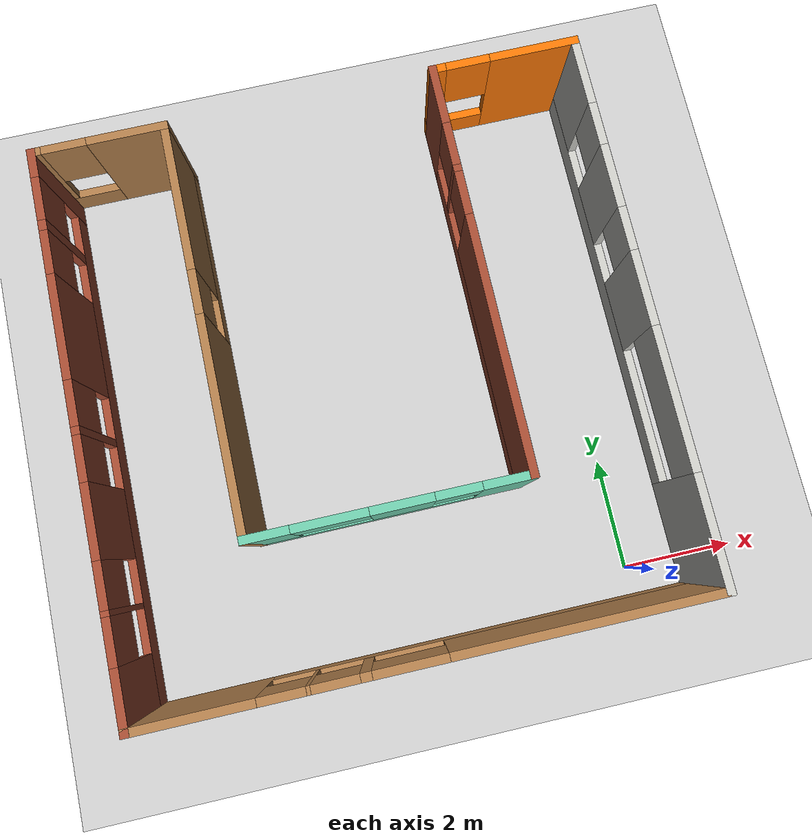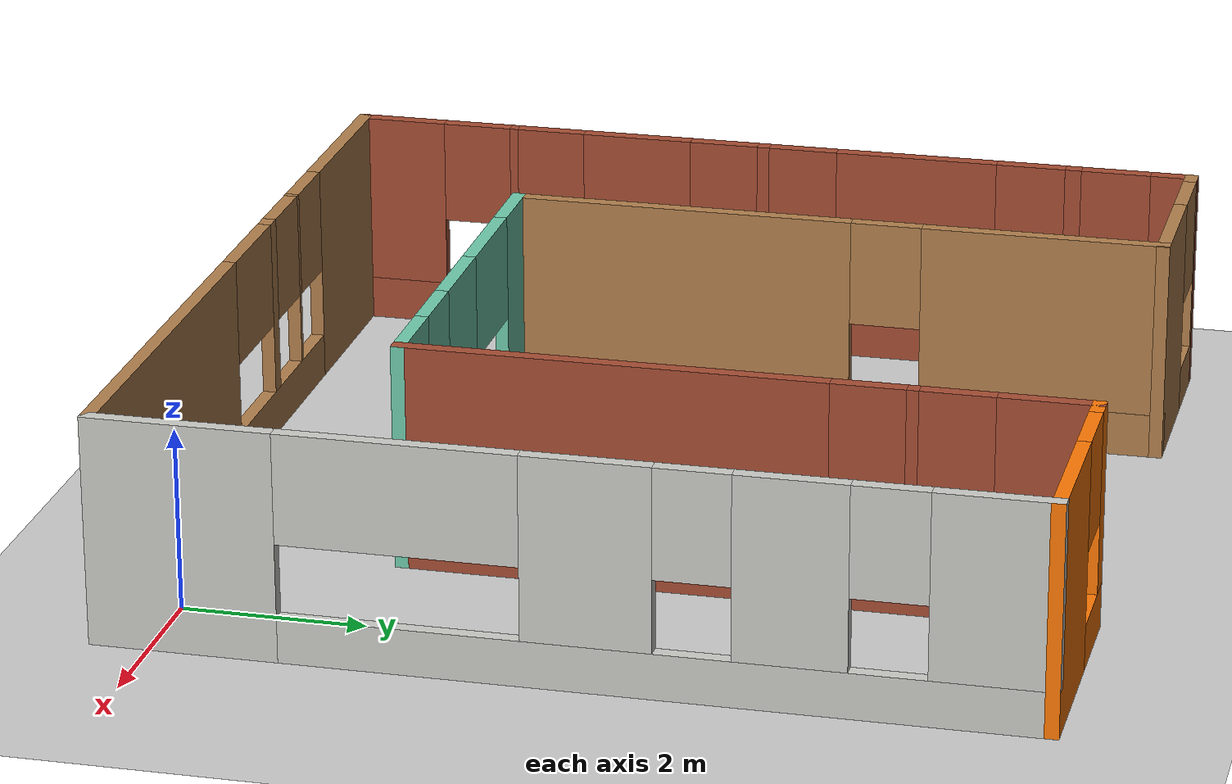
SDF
<sdf version="1.6">
 <world name="default">
  <light name="sun" type="directional">
   <pose>0 0 10 0 -0 0</pose>
   <diffuse>0.8 0.8 0.8 1</diffuse>
   <specular>0.2 0.2 0.2 1</specular>
   <attenuation>
    <range>1000</range>
    <constant>0.9</constant>
    <linear>0.01</linear>
    <quadratic>0.001</quadratic>
   </attenuation>
   <direction>-0.5 0.1 -0.9</direction>
  </light>
  <model name="ground_plane">
   <static>1</static>
   <link name="link">
    <collision name="collision">
     <geometry><plane><normal>0 0 1</normal><size>100 100</size></plane></geometry>
     <surface>
      <contact><collide_bitmask>65535</collide_bitmask></contact>
      <friction><ode><mu>100</mu><mu2>50</mu2></ode></friction>
     </surface>
    </collision>
    <visual name="visual">
     <cast_shadows>0</cast_shadows>
     <geometry><plane><normal>0 0 1</normal><size>100 100</size></plane></geometry>
     <material>
      <script><uri>file://media/materials/scripts/gazebo.material</uri><name>Gazebo/Grey</name></script>
     </material>
    </visual>
   </link>
  </model>
  <gravity>0 0 -9.8</gravity>
  <magnetic_field>6e-06 2.3e-05 -4.2e-05</magnetic_field>
  <atmosphere type="adiabatic"/>
  <physics name="default_physics" default="0" type="ode">
   <max_step_size>0.001</max_step_size>
   <real_time_factor>1</real_time_factor>
   <real_time_update_rate>1000</real_time_update_rate>
  </physics>
  <scene><ambient>0.4 0.4 0.4 1</ambient><background>0.7 0.7 0.7 1</background><shadows>1</shadows></scene>
  <spherical_coordinates>
   <surface_model>EARTH_WGS84</surface_model>
   <latitude_deg>0</latitude_deg>
   <longitude_deg>0</longitude_deg>
   <elevation>0</elevation>
   <heading_deg>0</heading_deg>
  </spherical_coordinates>
  <model name="MyWorld2">
   <pose>-3.91528 4.35922 0 0 -0 0</pose>
   <link name="Wall_28">
    <pose>4.9 0 0 0 -0 1.5708</pose>
    <visual name="Wall_28_Visual_0">
     <pose>-3.99143 0 1.25 0 -0 0</pose>
     <geometry><box><size>2.01715 0.15 2.5</size></box></geometry>
     <material>
      <script><uri>file://media/materials/scripts/gazebo.material</uri><name>Gazebo/CeilingTiled</name></script>
      <ambient>1 1 1 1</ambient>
     </material>
     <meta><layer>0</layer></meta>
    </visual>
    <collision name="Wall_28_Collision_0">
     <geometry><box><size>2.01715 0.15 2.5</size></box></geometry>
     <pose>-3.99143 0 1.25 0 -0 0</pose>
    </collision>
    <visual name="Wall_28_Visual_1">
     <pose>1.00857 0 0.25 0 -0 0</pose>
     <geometry><box><size>7.98285 0.15 0.5</size></box></geometry>
     <material>
      <script><uri>file://media/materials/scripts/gazebo.material</uri><name>Gazebo/CeilingTiled</name></script>
      <ambient>1 1 1 1</ambient>
     </material>
     <meta><layer>0</layer></meta>
    </visual>
    <collision name="Wall_28_Collision_1">
     <geometry><box><size>7.98285 0.15 0.5</size></box></geometry>
     <pose>1.00857 0 0.25 0 -0 0</pose>
    </collision>
    <visual name="Wall_28_Visual_2">
     <pose>0.230766 0 1.5 0 -0 0</pose>
     <geometry><box><size>1.35964 0.15 2</size></box></geometry>
     <material>
      <script><uri>file://media/materials/scripts/gazebo.material</uri><name>Gazebo/CeilingTiled</name></script>
      <ambient>1 1 1 1</ambient>
     </material>
     <meta><layer>0</layer></meta>
    </visual>
    <collision name="Wall_28_Collision_2">
     <geometry><box><size>1.35964 0.15 2</size></box></geometry>
     <pose>0.230766 0 1.5 0 -0 0</pose>
    </collision>
    <visual name="Wall_28_Visual_3">
     <pose>2.29916 0 1.5 0 -0 0</pose>
     <geometry><box><size>1.17714 0.15 2</size></box></geometry>
     <material>
      <script><uri>file://media/materials/scripts/gazebo.material</uri><name>Gazebo/CeilingTiled</name></script>
      <ambient>1 1 1 1</ambient>
     </material>
     <meta><layer>0</layer></meta>
    </visual>
    <collision name="Wall_28_Collision_3">
     <geometry><box><size>1.17714 0.15 2</size></box></geometry>
     <pose>2.29916 0 1.5 0 -0 0</pose>
    </collision>
    <visual name="Wall_28_Visual_4">
     <pose>4.34386 0 1.5 0 -0 0</pose>
     <geometry><box><size>1.31228 0.15 2</size></box></geometry>
     <material>
      <script><uri>file://media/materials/scripts/gazebo.material</uri><name>Gazebo/CeilingTiled</name></script>
      <ambient>1 1 1 1</ambient>
     </material>
     <meta><layer>0</layer></meta>
    </visual>
    <collision name="Wall_28_Collision_4">
     <geometry><box><size>1.31228 0.15 2</size></box></geometry>
     <pose>4.34386 0 1.5 0 -0 0</pose>
    </collision>
    <visual name="Wall_28_Visual_5">
     <pose>-1.71595 0 1.9 0 -0 0</pose>
     <geometry><box><size>2.5338 0.15 1.2</size></box></geometry>
     <material>
      <script><uri>file://media/materials/scripts/gazebo.material</uri><name>Gazebo/CeilingTiled</name></script>
      <ambient>1 1 1 1</ambient>
     </material>
     <meta><layer>0</layer></meta>
    </visual>
    <collision name="Wall_28_Collision_5">
     <geometry><box><size>2.5338 0.15 1.2</size></box></geometry>
     <pose>-1.71595 0 1.9 0 -0 0</pose>
    </collision>
    <visual name="Wall_28_Visual_6">
     <pose>1.31059 0 1.9 0 -0 0</pose>
     <geometry><box><size>0.8 0.15 1.2</size></box></geometry>
     <material>
      <script><uri>file://media/materials/scripts/gazebo.material</uri><name>Gazebo/CeilingTiled</name></script>
      <ambient>1 1 1 1</ambient>
     </material>
     <meta><layer>0</layer></meta>
    </visual>
    <collision name="Wall_28_Collision_6">
     <geometry><box><size>0.8 0.15 1.2</size></box></geometry>
     <pose>1.31059 0 1.9 0 -0 0</pose>
    </collision>
    <visual name="Wall_28_Visual_7">
     <pose>3.28773 0 1.9 0 -0 0</pose>
     <geometry><box><size>0.8 0.15 1.2</size></box></geometry>
     <material>
      <script><uri>file://media/materials/scripts/gazebo.material</uri><name>Gazebo/CeilingTiled</name></script>
      <ambient>1 1 1 1</ambient>
     </material>
     <meta><layer>0</layer></meta>
    </visual>
    <collision name="Wall_28_Collision_7">
     <geometry><box><size>0.8 0.15 1.2</size></box></geometry>
     <pose>3.28773 0 1.9 0 -0 0</pose>
    </collision>
   </link>
   <link name="Wall_29">
    <pose>3.6 4.925 0 0 -0 3.14159</pose>
    <visual name="Wall_29_Visual_0">
     <pose>-0.556536 0 1.25 0 -0 0</pose>
     <geometry><box><size>1.63693 0.15 2.5</size></box></geometry>
     <material>
      <script><uri>file://media/materials/scripts/gazebo.material</uri><name>Gazebo/Grey</name></script>
      <ambient>0.996078 0.47451 0.0196078 1</ambient>
     </material>
     <meta><layer>0</layer></meta>
    </visual>
    <collision name="Wall_29_Collision_0">
     <geometry><box><size>1.63693 0.15 2.5</size></box></geometry>
     <pose>-0.556536 0 1.25 0 -0 0</pose>
    </collision>
    <visual name="Wall_29_Visual_1">
     <pose>0.818464 0 0.25 0 -0 0</pose>
     <geometry><box><size>1.11307 0.15 0.5</size></box></geometry>
     <material>
      <script><uri>file://media/materials/scripts/gazebo.material</uri><name>Gazebo/Grey</name></script>
      <ambient>0.996078 0.47451 0.0196078 1</ambient>
     </material>
     <meta><layer>0</layer></meta>
    </visual>
    <collision name="Wall_29_Collision_1">
     <geometry><box><size>1.11307 0.15 0.5</size></box></geometry>
     <pose>0.818464 0 0.25 0 -0 0</pose>
    </collision>
    <visual name="Wall_29_Visual_2">
     <pose>1.21846 0 1.5 0 -0 0</pose>
     <geometry><box><size>0.313071 0.15 2</size></box></geometry>
     <material>
      <script><uri>file://media/materials/scripts/gazebo.material</uri><name>Gazebo/Grey</name></script>
      <ambient>0.996078 0.47451 0.0196078 1</ambient>
     </material>
     <meta><layer>0</layer></meta>
    </visual>
    <collision name="Wall_29_Collision_2">
     <geometry><box><size>0.313071 0.15 2</size></box></geometry>
     <pose>1.21846 0 1.5 0 -0 0</pose>
    </collision>
    <visual name="Wall_29_Visual_3">
     <pose>0.661929 0 1.9 0 -0 0</pose>
     <geometry><box><size>0.8 0.15 1.2</size></box></geometry>
     <material>
      <script><uri>file://media/materials/scripts/gazebo.material</uri><name>Gazebo/Grey</name></script>
      <ambient>0.996078 0.47451 0.0196078 1</ambient>
     </material>
     <meta><layer>0</layer></meta>
    </visual>
    <collision name="Wall_29_Collision_3">
     <geometry><box><size>0.8 0.15 1.2</size></box></geometry>
     <pose>0.661929 0 1.9 0 -0 0</pose>
    </collision>
   </link>
   <link name="Wall_30">
    <pose>2.3 1.25 0 0 0 -1.5708</pose>
    <visual name="Wall_30_Visual_0">
     <pose>-3.19272 0 1.25 0 -0 0</pose>
     <geometry><box><size>1.11456 0.15 2.5</size></box></geometry>
     <material>
      <script><uri>file://media/materials/scripts/gazebo.material</uri><name>Gazebo/Bricks</name></script>
      <ambient>1 1 1 1</ambient>
     </material>
     <meta><layer>0</layer></meta>
    </visual>
    <collision name="Wall_30_Collision_0">
     <geometry><box><size>1.11456 0.15 2.5</size></box></geometry>
     <pose>-3.19272 0 1.25 0 -0 0</pose>
    </collision>
    <visual name="Wall_30_Visual_1">
     <pose>0.557281 0 0.25 0 -0 0</pose>
     <geometry><box><size>6.38544 0.15 0.5</size></box></geometry>
     <material>
      <script><uri>file://media/materials/scripts/gazebo.material</uri><name>Gazebo/Bricks</name></script>
      <ambient>1 1 1 1</ambient>
     </material>
     <meta><layer>0</layer></meta>
    </visual>
    <collision name="Wall_30_Collision_1">
     <geometry><box><size>6.38544 0.15 0.5</size></box></geometry>
     <pose>0.557281 0 0.25 0 -0 0</pose>
    </collision>
    <visual name="Wall_30_Visual_2">
     <pose>-1.77157 0 1.5 0 -0 0</pose>
     <geometry><box><size>0.127734 0.15 2</size></box></geometry>
     <material>
      <script><uri>file://media/materials/scripts/gazebo.material</uri><name>Gazebo/Bricks</name></script>
      <ambient>1 1 1 1</ambient>
     </material>
     <meta><layer>0</layer></meta>
    </visual>
    <collision name="Wall_30_Collision_2">
     <geometry><box><size>0.127734 0.15 2</size></box></geometry>
     <pose>-1.77157 0 1.5 0 -0 0</pose>
    </collision>
    <visual name="Wall_30_Visual_3">
     <pose>1.42115 0 1.5 0 -0 0</pose>
     <geometry><box><size>4.6577 0.15 2</size></box></geometry>
     <material>
      <script><uri>file://media/materials/scripts/gazebo.material</uri><name>Gazebo/Bricks</name></script>
      <ambient>1 1 1 1</ambient>
     </material>
     <meta><layer>0</layer></meta>
    </visual>
    <collision name="Wall_30_Collision_3">
     <geometry><box><size>4.6577 0.15 2</size></box></geometry>
     <pose>1.42115 0 1.5 0 -0 0</pose>
    </collision>
    <visual name="Wall_30_Visual_4">
     <pose>-2.23544 0 1.9 0 -0 0</pose>
     <geometry><box><size>0.8 0.15 1.2</size></box></geometry>
     <material>
      <script><uri>file://media/materials/scripts/gazebo.material</uri><name>Gazebo/Bricks</name></script>
      <ambient>1 1 1 1</ambient>
     </material>
     <meta><layer>0</layer></meta>
    </visual>
    <collision name="Wall_30_Collision_4">
     <geometry><box><size>0.8 0.15 1.2</size></box></geometry>
     <pose>-2.23544 0 1.9 0 -0 0</pose>
    </collision>
    <visual name="Wall_30_Visual_5">
     <pose>-1.3077 0 1.9 0 -0 0</pose>
     <geometry><box><size>0.8 0.15 1.2</size></box></geometry>
     <material>
      <script><uri>file://media/materials/scripts/gazebo.material</uri><name>Gazebo/Bricks</name></script>
      <ambient>1 1 1 1</ambient>
     </material>
     <meta><layer>0</layer></meta>
    </visual>
    <collision name="Wall_30_Collision_5">
     <geometry><box><size>0.8 0.15 1.2</size></box></geometry>
     <pose>-1.3077 0 1.9 0 -0 0</pose>
    </collision>
   </link>
   <link name="Wall_31">
    <pose>-0.125 -2.425 0 0 -0 3.14159</pose>
    <visual name="Wall_31_Visual_0">
     <pose>-2.03099 0 1.25 0 -0 0</pose>
     <geometry><box><size>0.938023 0.15 2.5</size></box></geometry>
     <material>
      <script><uri>file://media/materials/scripts/gazebo.material</uri><name>Gazebo/Grey</name></script>
      <ambient>0.435294 0.796078 0.67451 1</ambient>
     </material>
     <meta><layer>0</layer></meta>
    </visual>
    <collision name="Wall_31_Collision_0">
     <geometry><box><size>0.938023 0.15 2.5</size></box></geometry>
     <pose>-2.03099 0 1.25 0 -0 0</pose>
    </collision>
    <visual name="Wall_31_Visual_1">
     <pose>0.469011 0 0.25 0 -0 0</pose>
     <geometry><box><size>4.06198 0.15 0.5</size></box></geometry>
     <material>
      <script><uri>file://media/materials/scripts/gazebo.material</uri><name>Gazebo/Grey</name></script>
      <ambient>0.435294 0.796078 0.67451 1</ambient>
     </material>
     <meta><layer>0</layer></meta>
    </visual>
    <collision name="Wall_31_Collision_1">
     <geometry><box><size>4.06198 0.15 0.5</size></box></geometry>
     <pose>0.469011 0 0.25 0 -0 0</pose>
    </collision>
    <visual name="Wall_31_Visual_2">
     <pose>-0.21143 0 1.5 0 -0 0</pose>
     <geometry><box><size>1.10109 0.15 2</size></box></geometry>
     <material>
      <script><uri>file://media/materials/scripts/gazebo.material</uri><name>Gazebo/Grey</name></script>
      <ambient>0.435294 0.796078 0.67451 1</ambient>
     </material>
     <meta><layer>0</layer></meta>
    </visual>
    <collision name="Wall_31_Collision_2">
     <geometry><box><size>1.10109 0.15 2</size></box></geometry>
     <pose>-0.21143 0 1.5 0 -0 0</pose>
    </collision>
    <visual name="Wall_31_Visual_3">
     <pose>2.07811 0 1.5 0 -0 0</pose>
     <geometry><box><size>0.843786 0.15 2</size></box></geometry>
     <material>
      <script><uri>file://media/materials/scripts/gazebo.material</uri><name>Gazebo/Grey</name></script>
      <ambient>0.435294 0.796078 0.67451 1</ambient>
     </material>
     <meta><layer>0</layer></meta>
    </visual>
    <collision name="Wall_31_Collision_3">
     <geometry><box><size>0.843786 0.15 2</size></box></geometry>
     <pose>2.07811 0 1.5 0 -0 0</pose>
    </collision>
    <visual name="Wall_31_Visual_4">
     <pose>-1.16198 0 1.9 0 -0 0</pose>
     <geometry><box><size>0.8 0.15 1.2</size></box></geometry>
     <material>
      <script><uri>file://media/materials/scripts/gazebo.material</uri><name>Gazebo/Grey</name></script>
      <ambient>0.435294 0.796078 0.67451 1</ambient>
     </material>
     <meta><layer>0</layer></meta>
    </visual>
    <collision name="Wall_31_Collision_4">
     <geometry><box><size>0.8 0.15 1.2</size></box></geometry>
     <pose>-1.16198 0 1.9 0 -0 0</pose>
    </collision>
    <visual name="Wall_31_Visual_5">
     <pose>0.997665 0 1.9 0 -0 0</pose>
     <geometry><box><size>1.3171 0.15 1.2</size></box></geometry>
     <material>
      <script><uri>file://media/materials/scripts/gazebo.material</uri><name>Gazebo/Grey</name></script>
      <ambient>0.435294 0.796078 0.67451 1</ambient>
     </material>
     <meta><layer>0</layer></meta>
    </visual>
    <collision name="Wall_31_Collision_5">
     <geometry><box><size>1.3171 0.15 1.2</size></box></geometry>
     <pose>0.997665 0 1.9 0 -0 0</pose>
    </collision>
   </link>
   <link name="Wall_32">
    <pose>-2.55 1.25 0 0 -0 1.5708</pose>
    <visual name="Wall_32_Visual_0">
     <pose>-1.78616 0 1.25 0 -0 0</pose>
     <geometry><box><size>3.92768 0.15 2.5</size></box></geometry>
     <material>
      <script><uri>file://media/materials/scripts/gazebo.material</uri><name>Gazebo/Wood</name></script>
      <ambient>1 1 1 1</ambient>
     </material>
     <meta><layer>0</layer></meta>
    </visual>
    <collision name="Wall_32_Collision_0">
     <geometry><box><size>3.92768 0.15 2.5</size></box></geometry>
     <pose>-1.78616 0 1.25 0 -0 0</pose>
    </collision>
    <visual name="Wall_32_Visual_1">
     <pose>1.96384 0 0.25 0 -0 0</pose>
     <geometry><box><size>3.57232 0.15 0.5</size></box></geometry>
     <material>
      <script><uri>file://media/materials/scripts/gazebo.material</uri><name>Gazebo/Wood</name></script>
      <ambient>1 1 1 1</ambient>
     </material>
     <meta><layer>0</layer></meta>
    </visual>
    <collision name="Wall_32_Collision_1">
     <geometry><box><size>3.57232 0.15 0.5</size></box></geometry>
     <pose>1.96384 0 0.25 0 -0 0</pose>
    </collision>
    <visual name="Wall_32_Visual_2">
     <pose>2.36384 0 1.5 0 -0 0</pose>
     <geometry><box><size>2.77231 0.15 2</size></box></geometry>
     <material>
      <script><uri>file://media/materials/scripts/gazebo.material</uri><name>Gazebo/Wood</name></script>
      <ambient>1 1 1 1</ambient>
     </material>
     <meta><layer>0</layer></meta>
    </visual>
    <collision name="Wall_32_Collision_2">
     <geometry><box><size>2.77231 0.15 2</size></box></geometry>
     <pose>2.36384 0 1.5 0 -0 0</pose>
    </collision>
    <visual name="Wall_32_Visual_3">
     <pose>0.577685 0 1.9 0 -0 0</pose>
     <geometry><box><size>0.8 0.15 1.2</size></box></geometry>
     <material>
      <script><uri>file://media/materials/scripts/gazebo.material</uri><name>Gazebo/Wood</name></script>
      <ambient>1 1 1 1</ambient>
     </material>
     <meta><layer>0</layer></meta>
    </visual>
    <collision name="Wall_32_Collision_3">
     <geometry><box><size>0.8 0.15 1.2</size></box></geometry>
     <pose>0.577685 0 1.9 0 -0 0</pose>
    </collision>
   </link>
   <link name="Wall_33">
    <pose>-3.725 4.925 0 0 -0 3.14159</pose>
    <visual name="Wall_33_Visual_0">
     <pose>-0.521644 0 1.25 0 -0 0</pose>
     <geometry><box><size>1.45671 0.15 2.5</size></box></geometry>
     <material>
      <script><uri>file://media/materials/scripts/gazebo.material</uri><name>Gazebo/Wood</name></script>
      <ambient>1 1 1 1</ambient>
     </material>
     <meta><layer>0</layer></meta>
    </visual>
    <collision name="Wall_33_Collision_0">
     <geometry><box><size>1.45671 0.15 2.5</size></box></geometry>
     <pose>-0.521644 0 1.25 0 -0 0</pose>
    </collision>
    <visual name="Wall_33_Visual_1">
     <pose>0.728356 0 0.25 0 -0 0</pose>
     <geometry><box><size>1.04329 0.15 0.5</size></box></geometry>
     <material>
      <script><uri>file://media/materials/scripts/gazebo.material</uri><name>Gazebo/Wood</name></script>
      <ambient>1 1 1 1</ambient>
     </material>
     <meta><layer>0</layer></meta>
    </visual>
    <collision name="Wall_33_Collision_1">
     <geometry><box><size>1.04329 0.15 0.5</size></box></geometry>
     <pose>0.728356 0 0.25 0 -0 0</pose>
    </collision>
    <visual name="Wall_33_Visual_2">
     <pose>1.12836 0 1.5 0 -0 0</pose>
     <geometry><box><size>0.243289 0.15 2</size></box></geometry>
     <material>
      <script><uri>file://media/materials/scripts/gazebo.material</uri><name>Gazebo/Wood</name></script>
      <ambient>1 1 1 1</ambient>
     </material>
     <meta><layer>0</layer></meta>
    </visual>
    <collision name="Wall_33_Collision_2">
     <geometry><box><size>0.243289 0.15 2</size></box></geometry>
     <pose>1.12836 0 1.5 0 -0 0</pose>
    </collision>
    <visual name="Wall_33_Visual_3">
     <pose>0.606711 0 1.9 0 -0 0</pose>
     <geometry><box><size>0.8 0.15 1.2</size></box></geometry>
     <material>
      <script><uri>file://media/materials/scripts/gazebo.material</uri><name>Gazebo/Wood</name></script>
      <ambient>1 1 1 1</ambient>
     </material>
     <meta><layer>0</layer></meta>
    </visual>
    <collision name="Wall_33_Collision_3">
     <geometry><box><size>0.8 0.15 1.2</size></box></geometry>
     <pose>0.606711 0 1.9 0 -0 0</pose>
    </collision>
   </link>
   <link name="Wall_34">
    <pose>-4.9 0 0 0 0 -1.5708</pose>
    <visual name="Wall_34_Visual_0">
     <pose>-4.73169 0 1.25 0 -0 0</pose>
     <geometry><box><size>0.536629 0.15 2.5</size></box></geometry>
     <material>
      <script><uri>file://media/materials/scripts/gazebo.material</uri><name>Gazebo/Bricks</name></script>
      <ambient>1 1 1 1</ambient>
     </material>
     <meta><layer>0</layer></meta>
    </visual>
    <collision name="Wall_34_Collision_0">
     <geometry><box><size>0.536629 0.15 2.5</size></box></geometry>
     <pose>-4.73169 0 1.25 0 -0 0</pose>
    </collision>
    <visual name="Wall_34_Visual_1">
     <pose>0.268314 0 0.25 0 -0 0</pose>
     <geometry><box><size>9.46337 0.15 0.5</size></box></geometry>
     <material>
      <script><uri>file://media/materials/scripts/gazebo.material</uri><name>Gazebo/Bricks</name></script>
      <ambient>1 1 1 1</ambient>
     </material>
     <meta><layer>0</layer></meta>
    </visual>
    <collision name="Wall_34_Collision_1">
     <geometry><box><size>9.46337 0.15 0.5</size></box></geometry>
     <pose>0.268314 0 0.25 0 -0 0</pose>
    </collision>
    <visual name="Wall_34_Visual_2">
     <pose>-3.56909 0 1.5 0 -0 0</pose>
     <geometry><box><size>0.188569 0.15 2</size></box></geometry>
     <material>
      <script><uri>file://media/materials/scripts/gazebo.material</uri><name>Gazebo/Bricks</name></script>
      <ambient>1 1 1 1</ambient>
     </material>
     <meta><layer>0</layer></meta>
    </visual>
    <collision name="Wall_34_Collision_2">
     <geometry><box><size>0.188569 0.15 2</size></box></geometry>
     <pose>-3.56909 0 1.5 0 -0 0</pose>
    </collision>
    <visual name="Wall_34_Visual_3">
     <pose>-1.73643 0 1.5 0 -0 0</pose>
     <geometry><box><size>1.87674 0.15 2</size></box></geometry>
     <material>
      <script><uri>file://media/materials/scripts/gazebo.material</uri><name>Gazebo/Bricks</name></script>
      <ambient>1 1 1 1</ambient>
     </material>
     <meta><layer>0</layer></meta>
    </visual>
    <collision name="Wall_34_Collision_3">
     <geometry><box><size>1.87674 0.15 2</size></box></geometry>
     <pose>-1.73643 0 1.5 0 -0 0</pose>
    </collision>
    <visual name="Wall_34_Visual_4">
     <pose>0.073409 0 1.5 0 -0 0</pose>
     <geometry><box><size>0.142943 0.15 2</size></box></geometry>
     <material>
      <script><uri>file://media/materials/scripts/gazebo.material</uri><name>Gazebo/Bricks</name></script>
      <ambient>1 1 1 1</ambient>
     </material>
     <meta><layer>0</layer></meta>
    </visual>
    <collision name="Wall_34_Collision_4">
     <geometry><box><size>0.142943 0.15 2</size></box></geometry>
     <pose>0.073409 0 1.5 0 -0 0</pose>
    </collision>
    <visual name="Wall_34_Visual_5">
     <pose>1.58668 0 1.5 0 -0 0</pose>
     <geometry><box><size>1.2836 0.15 2</size></box></geometry>
     <material>
      <script><uri>file://media/materials/scripts/gazebo.material</uri><name>Gazebo/Bricks</name></script>
      <ambient>1 1 1 1</ambient>
     </material>
     <meta><layer>0</layer></meta>
    </visual>
    <collision name="Wall_34_Collision_5">
     <geometry><box><size>1.2836 0.15 2</size></box></geometry>
     <pose>1.58668 0 1.5 0 -0 0</pose>
    </collision>
    <visual name="Wall_34_Visual_6">
     <pose>3.07714 0 1.5 0 -0 0</pose>
     <geometry><box><size>0.097316 0.15 2</size></box></geometry>
     <material>
      <script><uri>file://media/materials/scripts/gazebo.material</uri><name>Gazebo/Bricks</name></script>
      <ambient>1 1 1 1</ambient>
     </material>
     <meta><layer>0</layer></meta>
    </visual>
    <collision name="Wall_34_Collision_6">
     <geometry><box><size>0.097316 0.15 2</size></box></geometry>
     <pose>3.07714 0 1.5 0 -0 0</pose>
    </collision>
    <visual name="Wall_34_Visual_7">
     <pose>4.4629 0 1.5 0 -0 0</pose>
     <geometry><box><size>1.07421 0.15 2</size></box></geometry>
     <material>
      <script><uri>file://media/materials/scripts/gazebo.material</uri><name>Gazebo/Bricks</name></script>
      <ambient>1 1 1 1</ambient>
     </material>
     <meta><layer>0</layer></meta>
    </visual>
    <collision name="Wall_34_Collision_7">
     <geometry><box><size>1.07421 0.15 2</size></box></geometry>
     <pose>4.4629 0 1.5 0 -0 0</pose>
    </collision>
    <visual name="Wall_34_Visual_8">
     <pose>-4.06337 0 1.9 0 -0 0</pose>
     <geometry><box><size>0.8 0.15 1.2</size></box></geometry>
     <material>
      <script><uri>file://media/materials/scripts/gazebo.material</uri><name>Gazebo/Bricks</name></script>
      <ambient>1 1 1 1</ambient>
     </material>
     <meta><layer>0</layer></meta>
    </visual>
    <collision name="Wall_34_Collision_8">
     <geometry><box><size>0.8 0.15 1.2</size></box></geometry>
     <pose>-4.06337 0 1.9 0 -0 0</pose>
    </collision>
    <visual name="Wall_34_Visual_9">
     <pose>-3.0748 0 1.9 0 -0 0</pose>
     <geometry><box><size>0.8 0.15 1.2</size></box></geometry>
     <material>
      <script><uri>file://media/materials/scripts/gazebo.material</uri><name>Gazebo/Bricks</name></script>
      <ambient>1 1 1 1</ambient>
     </material>
     <meta><layer>0</layer></meta>
    </visual>
    <collision name="Wall_34_Collision_9">
     <geometry><box><size>0.8 0.15 1.2</size></box></geometry>
     <pose>-3.0748 0 1.9 0 -0 0</pose>
    </collision>
    <visual name="Wall_34_Visual_10">
     <pose>-0.398063 0 1.9 0 -0 0</pose>
     <geometry><box><size>0.8 0.15 1.2</size></box></geometry>
     <material>
      <script><uri>file://media/materials/scripts/gazebo.material</uri><name>Gazebo/Bricks</name></script>
      <ambient>1 1 1 1</ambient>
     </material>
     <meta><layer>0</layer></meta>
    </visual>
    <collision name="Wall_34_Collision_10">
     <geometry><box><size>0.8 0.15 1.2</size></box></geometry>
     <pose>-0.398063 0 1.9 0 -0 0</pose>
    </collision>
    <visual name="Wall_34_Visual_11">
     <pose>0.54488 0 1.9 0 -0 0</pose>
     <geometry><box><size>0.8 0.15 1.2</size></box></geometry>
     <material>
      <script><uri>file://media/materials/scripts/gazebo.material</uri><name>Gazebo/Bricks</name></script>
      <ambient>1 1 1 1</ambient>
     </material>
     <meta><layer>0</layer></meta>
    </visual>
    <collision name="Wall_34_Collision_11">
     <geometry><box><size>0.8 0.15 1.2</size></box></geometry>
     <pose>0.54488 0 1.9 0 -0 0</pose>
    </collision>
    <visual name="Wall_34_Visual_12">
     <pose>2.62848 0 1.9 0 -0 0</pose>
     <geometry><box><size>0.8 0.15 1.2</size></box></geometry>
     <material>
      <script><uri>file://media/materials/scripts/gazebo.material</uri><name>Gazebo/Bricks</name></script>
      <ambient>1 1 1 1</ambient>
     </material>
     <meta><layer>0</layer></meta>
    </visual>
    <collision name="Wall_34_Collision_12">
     <geometry><box><size>0.8 0.15 1.2</size></box></geometry>
     <pose>2.62848 0 1.9 0 -0 0</pose>
    </collision>
    <visual name="Wall_34_Visual_13">
     <pose>3.5258 0 1.9 0 -0 0</pose>
     <geometry><box><size>0.8 0.15 1.2</size></box></geometry>
     <material>
      <script><uri>file://media/materials/scripts/gazebo.material</uri><name>Gazebo/Bricks</name></script>
      <ambient>1 1 1 1</ambient>
     </material>
     <meta><layer>0</layer></meta>
    </visual>
    <collision name="Wall_34_Collision_13">
     <geometry><box><size>0.8 0.15 1.2</size></box></geometry>
     <pose>3.5258 0 1.9 0 -0 0</pose>
    </collision>
   </link>
   <link name="Wall_35">
    <pose>0 -4.925 0 0 -0 0</pose>
    <visual name="Wall_35_Visual_0">
     <pose>-3.8952 0 1.25 0 -0 0</pose>
     <geometry><box><size>2.15959 0.15 2.5</size></box></geometry>
     <material>
      <script><uri>file://media/materials/scripts/gazebo.material</uri><name>Gazebo/Wood</name></script>
      <ambient>1 1 1 1</ambient>
     </material>
     <meta><layer>0</layer></meta>
    </visual>
    <collision name="Wall_35_Collision_0">
     <geometry><box><size>2.15959 0.15 2.5</size></box></geometry>
     <pose>-3.8952 0 1.25 0 -0 0</pose>
    </collision>
    <visual name="Wall_35_Visual_1">
     <pose>1.0798 0 0.25 0 -0 0</pose>
     <geometry><box><size>7.79041 0.15 0.5</size></box></geometry>
     <material>
      <script><uri>file://media/materials/scripts/gazebo.material</uri><name>Gazebo/Wood</name></script>
      <ambient>1 1 1 1</ambient>
     </material>
     <meta><layer>0</layer></meta>
    </visual>
    <collision name="Wall_35_Collision_1">
     <geometry><box><size>7.79041 0.15 0.5</size></box></geometry>
     <pose>1.0798 0 0.25 0 -0 0</pose>
    </collision>
    <visual name="Wall_35_Visual_2">
     <pose>-1.98196 0 1.5 0 -0 0</pose>
     <geometry><box><size>0.066899 0.15 2</size></box></geometry>
     <material>
      <script><uri>file://media/materials/scripts/gazebo.material</uri><name>Gazebo/Wood</name></script>
      <ambient>1 1 1 1</ambient>
     </material>
     <meta><layer>0</layer></meta>
    </visual>
    <collision name="Wall_35_Collision_2">
     <geometry><box><size>0.066899 0.15 2</size></box></geometry>
     <pose>-1.98196 0 1.5 0 -0 0</pose>
    </collision>
    <visual name="Wall_35_Visual_3">
     <pose>-1.05422 0 1.5 0 -0 0</pose>
     <geometry><box><size>0.188569 0.15 2</size></box></geometry>
     <material>
      <script><uri>file://media/materials/scripts/gazebo.material</uri><name>Gazebo/Wood</name></script>
      <ambient>1 1 1 1</ambient>
     </material>
     <meta><layer>0</layer></meta>
    </visual>
    <collision name="Wall_35_Collision_3">
     <geometry><box><size>0.188569 0.15 2</size></box></geometry>
     <pose>-1.05422 0 1.5 0 -0 0</pose>
    </collision>
    <visual name="Wall_35_Visual_4">
     <pose>2.63566 0 1.5 0 -0 0</pose>
     <geometry><box><size>4.67868 0.15 2</size></box></geometry>
     <material>
      <script><uri>file://media/materials/scripts/gazebo.material</uri><name>Gazebo/Wood</name></script>
      <ambient>1 1 1 1</ambient>
     </material>
     <meta><layer>0</layer></meta>
    </visual>
    <collision name="Wall_35_Collision_4">
     <geometry><box><size>4.67868 0.15 2</size></box></geometry>
     <pose>2.63566 0 1.5 0 -0 0</pose>
    </collision>
    <visual name="Wall_35_Visual_5">
     <pose>-2.41541 0 1.9 0 -0 0</pose>
     <geometry><box><size>0.8 0.15 1.2</size></box></geometry>
     <material>
      <script><uri>file://media/materials/scripts/gazebo.material</uri><name>Gazebo/Wood</name></script>
      <ambient>1 1 1 1</ambient>
     </material>
     <meta><layer>0</layer></meta>
    </visual>
    <collision name="Wall_35_Collision_5">
     <geometry><box><size>0.8 0.15 1.2</size></box></geometry>
     <pose>-2.41541 0 1.9 0 -0 0</pose>
    </collision>
    <visual name="Wall_35_Visual_6">
     <pose>-1.54851 0 1.9 0 -0 0</pose>
     <geometry><box><size>0.8 0.15 1.2</size></box></geometry>
     <material>
      <script><uri>file://media/materials/scripts/gazebo.material</uri><name>Gazebo/Wood</name></script>
      <ambient>1 1 1 1</ambient>
     </material>
     <meta><layer>0</layer></meta>
    </visual>
    <collision name="Wall_35_Collision_6">
     <geometry><box><size>0.8 0.15 1.2</size></box></geometry>
     <pose>-1.54851 0 1.9 0 -0 0</pose>
    </collision>
    <visual name="Wall_35_Visual_7">
     <pose>-0.33181 0 1.9 0 -0 0</pose>
     <geometry><box><size>1.25626 0.15 1.2</size></box></geometry>
     <material>
      <script><uri>file://media/materials/scripts/gazebo.material</uri><name>Gazebo/Wood</name></script>
      <ambient>1 1 1 1</ambient>
     </material>
     <meta><layer>0</layer></meta>
    </visual>
    <collision name="Wall_35_Collision_7">
     <geometry><box><size>1.25626 0.15 1.2</size></box></geometry>
     <pose>-0.33181 0 1.9 0 -0 0</pose>
    </collision>
   </link>
   <static>1</static>
  </model>
 </world>
</sdf>
